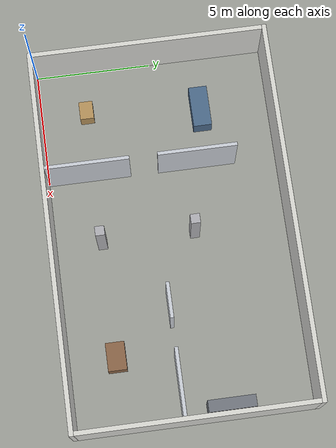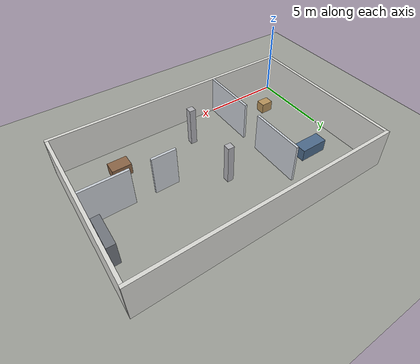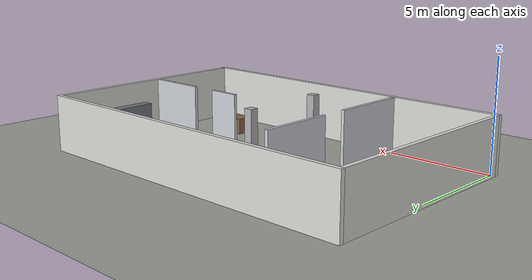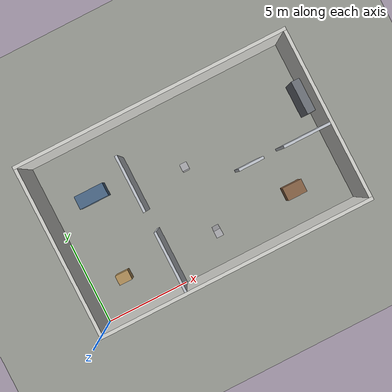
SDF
<?xml version="1.0"?>
<!-- 由 tools/gen_world.py 生成，请勿手改 -->
<sdf version="1.9">
  <world name="flat">
    <physics name="1ms" type="ignored">
      <max_step_size>0.002</max_step_size>
      <real_time_factor>1.0</real_time_factor>
    </physics>
    <plugin filename="gz-sim-physics-system" name="gz::sim::systems::Physics"/>
    <plugin filename="gz-sim-user-commands-system" name="gz::sim::systems::UserCommands"/>
    <plugin filename="gz-sim-scene-broadcaster-system" name="gz::sim::systems::SceneBroadcaster"/>
    <plugin filename="gz-sim-sensors-system" name="gz::sim::systems::Sensors">
      <render_engine>ogre2</render_engine>
    </plugin>
    <plugin filename="gz-sim-imu-system" name="gz::sim::systems::Imu"/>

    <gui fullscreen="0">
      <camera name="user_camera"><pose>-6 -8 10 0 0.6 0.9</pose></camera>
    </gui>

    <scene>
      <ambient>0.55 0.55 0.55 1</ambient>
      <background>0.78 0.84 0.90 1</background>
      <shadows>true</shadows>
    </scene>

    <light type="directional" name="sun">
      <cast_shadows>true</cast_shadows>
      <pose>0 0 20 0 0 0</pose>
      <diffuse>0.85 0.85 0.82 1</diffuse>
      <specular>0.2 0.2 0.2 1</specular>
      <direction>-0.4 0.3 -0.9</direction>
    </light>

    <model name="ground_plane">
      <static>true</static>
      <link name="link">
        <collision name="c"><geometry><plane><normal>0 0 1</normal><size>200 200</size></plane></geometry>
          <surface><friction><ode><mu>1.0</mu><mu2>1.0</mu2></ode></friction></surface></collision>
        <visual name="v"><geometry><plane><normal>0 0 1</normal><size>200 200</size></plane></geometry>
          <material><ambient>0.62 0.63 0.60 1</ambient><diffuse>0.62 0.63 0.60 1</diffuse></material></visual>
      </link>
    </model>

    <model name="building">
      <static>true</static>
      <link name="structure">
      <collision name="wall_s_c"><pose>8.0000 -0.1000 1.3000 0 0.00000 0</pose><geometry><box><size>16.4000 0.2000 2.6000</size></box></geometry><surface><friction><ode><mu>1.0</mu><mu2>1.0</mu2></ode></friction></surface></collision>
      <visual name="wall_s_v"><pose>8.0000 -0.1000 1.3000 0 0.00000 0</pose><geometry><box><size>16.4000 0.2000 2.6000</size></box></geometry><material><ambient>0.86 0.86 0.84 1</ambient><diffuse>0.86 0.86 0.84 1</diffuse><specular>0.1 0.1 0.1 1</specular></material></visual>
      <collision name="wall_n_c"><pose>8.0000 10.1000 1.3000 0 0.00000 0</pose><geometry><box><size>16.4000 0.2000 2.6000</size></box></geometry><surface><friction><ode><mu>1.0</mu><mu2>1.0</mu2></ode></friction></surface></collision>
      <visual name="wall_n_v"><pose>8.0000 10.1000 1.3000 0 0.00000 0</pose><geometry><box><size>16.4000 0.2000 2.6000</size></box></geometry><material><ambient>0.86 0.86 0.84 1</ambient><diffuse>0.86 0.86 0.84 1</diffuse><specular>0.1 0.1 0.1 1</specular></material></visual>
      <collision name="wall_w_c"><pose>-0.1000 5.0000 1.3000 0 0.00000 0</pose><geometry><box><size>0.2000 10.0000 2.6000</size></box></geometry><surface><friction><ode><mu>1.0</mu><mu2>1.0</mu2></ode></friction></surface></collision>
      <visual name="wall_w_v"><pose>-0.1000 5.0000 1.3000 0 0.00000 0</pose><geometry><box><size>0.2000 10.0000 2.6000</size></box></geometry><material><ambient>0.86 0.86 0.84 1</ambient><diffuse>0.86 0.86 0.84 1</diffuse><specular>0.1 0.1 0.1 1</specular></material></visual>
      <collision name="wall_e_c"><pose>16.1000 5.0000 1.3000 0 0.00000 0</pose><geometry><box><size>0.2000 10.0000 2.6000</size></box></geometry><surface><friction><ode><mu>1.0</mu><mu2>1.0</mu2></ode></friction></surface></collision>
      <visual name="wall_e_v"><pose>16.1000 5.0000 1.3000 0 0.00000 0</pose><geometry><box><size>0.2000 10.0000 2.6000</size></box></geometry><material><ambient>0.86 0.86 0.84 1</ambient><diffuse>0.86 0.86 0.84 1</diffuse><specular>0.1 0.1 0.1 1</specular></material></visual>
      <collision name="f1_w1a_c"><pose>5.0000 1.8000 1.3000 0 0.00000 0</pose><geometry><box><size>0.1500 3.6000 2.6000</size></box></geometry><surface><friction><ode><mu>1.0</mu><mu2>1.0</mu2></ode></friction></surface></collision>
      <visual name="f1_w1a_v"><pose>5.0000 1.8000 1.3000 0 0.00000 0</pose><geometry><box><size>0.1500 3.6000 2.6000</size></box></geometry><material><ambient>0.80 0.82 0.85 1</ambient><diffuse>0.80 0.82 0.85 1</diffuse><specular>0.1 0.1 0.1 1</specular></material></visual>
      <collision name="f1_w1b_c"><pose>5.0000 6.5000 1.3000 0 0.00000 0</pose><geometry><box><size>0.1500 3.4000 2.6000</size></box></geometry><surface><friction><ode><mu>1.0</mu><mu2>1.0</mu2></ode></friction></surface></collision>
      <visual name="f1_w1b_v"><pose>5.0000 6.5000 1.3000 0 0.00000 0</pose><geometry><box><size>0.1500 3.4000 2.6000</size></box></geometry><material><ambient>0.80 0.82 0.85 1</ambient><diffuse>0.80 0.82 0.85 1</diffuse><specular>0.1 0.1 0.1 1</specular></material></visual>
      <collision name="f1_w2a_c"><pose>11.2500 4.5000 1.3000 0 0.00000 0</pose><geometry><box><size>1.5000 0.1500 2.6000</size></box></geometry><surface><friction><ode><mu>1.0</mu><mu2>1.0</mu2></ode></friction></surface></collision>
      <visual name="f1_w2a_v"><pose>11.2500 4.5000 1.3000 0 0.00000 0</pose><geometry><box><size>1.5000 0.1500 2.6000</size></box></geometry><material><ambient>0.80 0.82 0.85 1</ambient><diffuse>0.80 0.82 0.85 1</diffuse><specular>0.1 0.1 0.1 1</specular></material></visual>
      <collision name="f1_w2b_c"><pose>14.6000 4.5000 1.3000 0 0.00000 0</pose><geometry><box><size>2.8000 0.1500 2.6000</size></box></geometry><surface><friction><ode><mu>1.0</mu><mu2>1.0</mu2></ode></friction></surface></collision>
      <visual name="f1_w2b_v"><pose>14.6000 4.5000 1.3000 0 0.00000 0</pose><geometry><box><size>2.8000 0.1500 2.6000</size></box></geometry><material><ambient>0.80 0.82 0.85 1</ambient><diffuse>0.80 0.82 0.85 1</diffuse><specular>0.1 0.1 0.1 1</specular></material></visual>
      <collision name="f1_pillar1_c"><pose>8.0000 2.0000 1.3000 0 0.00000 0</pose><geometry><box><size>0.4000 0.4000 2.6000</size></box></geometry><surface><friction><ode><mu>1.0</mu><mu2>1.0</mu2></ode></friction></surface></collision>
      <visual name="f1_pillar1_v"><pose>8.0000 2.0000 1.3000 0 0.00000 0</pose><geometry><box><size>0.4000 0.4000 2.6000</size></box></geometry><material><ambient>0.70 0.70 0.72 1</ambient><diffuse>0.70 0.70 0.72 1</diffuse><specular>0.1 0.1 0.1 1</specular></material></visual>
      <collision name="f1_pillar2_c"><pose>8.0000 6.0000 1.3000 0 0.00000 0</pose><geometry><box><size>0.4000 0.4000 2.6000</size></box></geometry><surface><friction><ode><mu>1.0</mu><mu2>1.0</mu2></ode></friction></surface></collision>
      <visual name="f1_pillar2_v"><pose>8.0000 6.0000 1.3000 0 0.00000 0</pose><geometry><box><size>0.4000 0.4000 2.6000</size></box></geometry><material><ambient>0.70 0.70 0.72 1</ambient><diffuse>0.70 0.70 0.72 1</diffuse><specular>0.1 0.1 0.1 1</specular></material></visual>
      <collision name="f1_crate_c"><pose>2.0000 2.0000 0.3500 0 0.00000 0</pose><geometry><box><size>0.8000 0.6000 0.7000</size></box></geometry><surface><friction><ode><mu>1.0</mu><mu2>1.0</mu2></ode></friction></surface></collision>
      <visual name="f1_crate_v"><pose>2.0000 2.0000 0.3500 0 0.00000 0</pose><geometry><box><size>0.8000 0.6000 0.7000</size></box></geometry><material><ambient>0.72 0.58 0.36 1</ambient><diffuse>0.72 0.58 0.36 1</diffuse><specular>0.1 0.1 0.1 1</specular></material></visual>
      <collision name="f1_sofa_c"><pose>2.5000 7.0000 0.4000 0 0.00000 0</pose><geometry><box><size>1.8000 0.8000 0.8000</size></box></geometry><surface><friction><ode><mu>1.0</mu><mu2>1.0</mu2></ode></friction></surface></collision>
      <visual name="f1_sofa_v"><pose>2.5000 7.0000 0.4000 0 0.00000 0</pose><geometry><box><size>1.8000 0.8000 0.8000</size></box></geometry><material><ambient>0.30 0.42 0.55 1</ambient><diffuse>0.30 0.42 0.55 1</diffuse><specular>0.1 0.1 0.1 1</specular></material></visual>
      <collision name="f1_table_c"><pose>13.0000 2.0000 0.3750 0 0.00000 0</pose><geometry><box><size>1.2000 0.8000 0.7500</size></box></geometry><surface><friction><ode><mu>1.0</mu><mu2>1.0</mu2></ode></friction></surface></collision>
      <visual name="f1_table_v"><pose>13.0000 2.0000 0.3750 0 0.00000 0</pose><geometry><box><size>1.2000 0.8000 0.7500</size></box></geometry><material><ambient>0.55 0.40 0.28 1</ambient><diffuse>0.55 0.40 0.28 1</diffuse><specular>0.1 0.1 0.1 1</specular></material></visual>
      <collision name="f1_cabinet_c"><pose>15.6500 6.5000 0.8000 0 0.00000 0</pose><geometry><box><size>0.5000 2.0000 1.6000</size></box></geometry><surface><friction><ode><mu>1.0</mu><mu2>1.0</mu2></ode></friction></surface></collision>
      <visual name="f1_cabinet_v"><pose>15.6500 6.5000 0.8000 0 0.00000 0</pose><geometry><box><size>0.5000 2.0000 1.6000</size></box></geometry><material><ambient>0.45 0.47 0.50 1</ambient><diffuse>0.45 0.47 0.50 1</diffuse><specular>0.1 0.1 0.1 1</specular></material></visual>
      </link>
    </model>
  </world>
</sdf>
